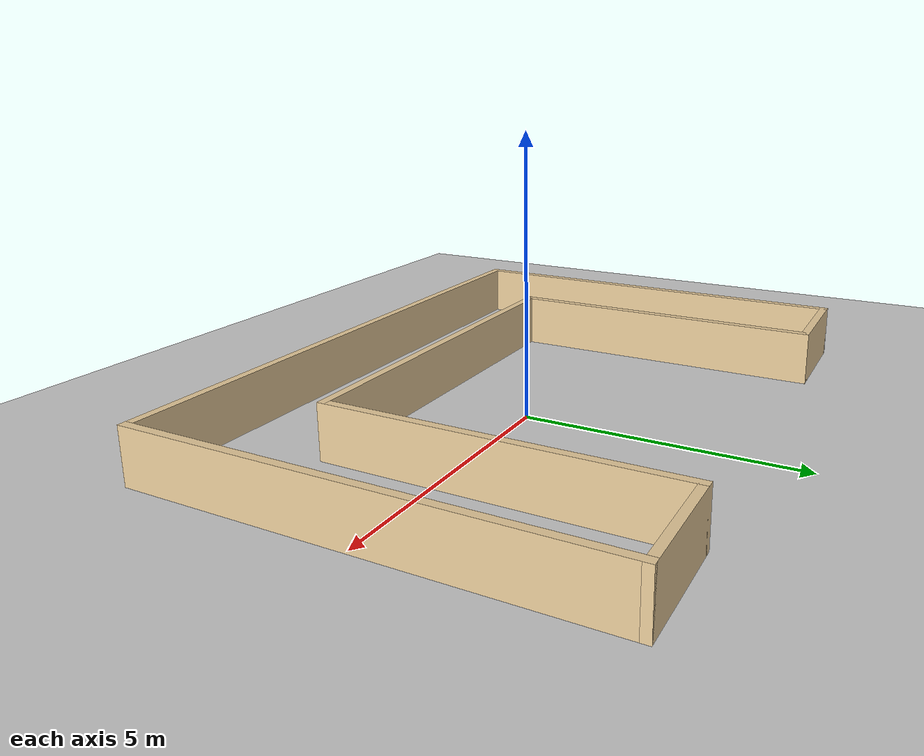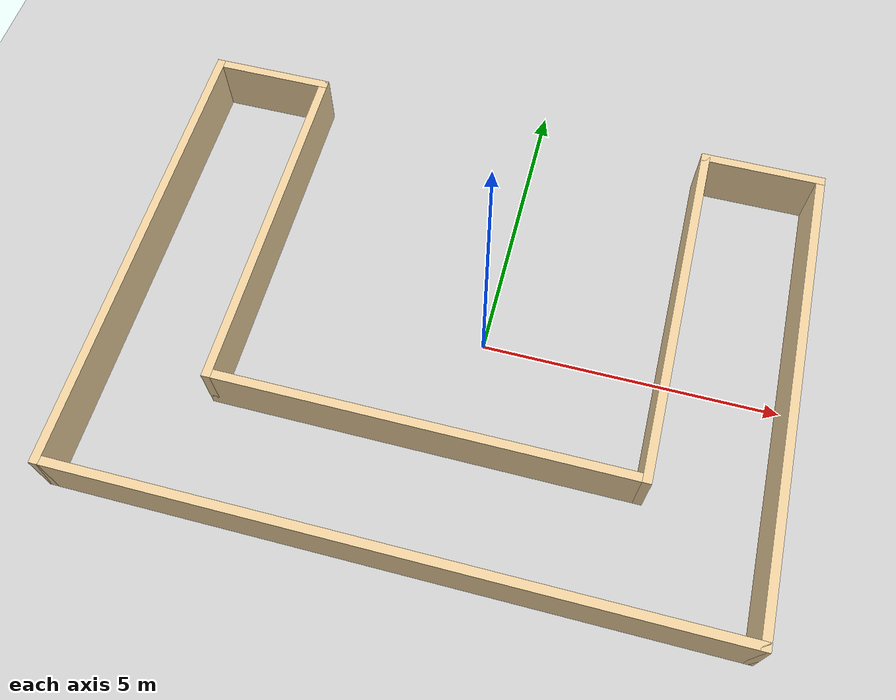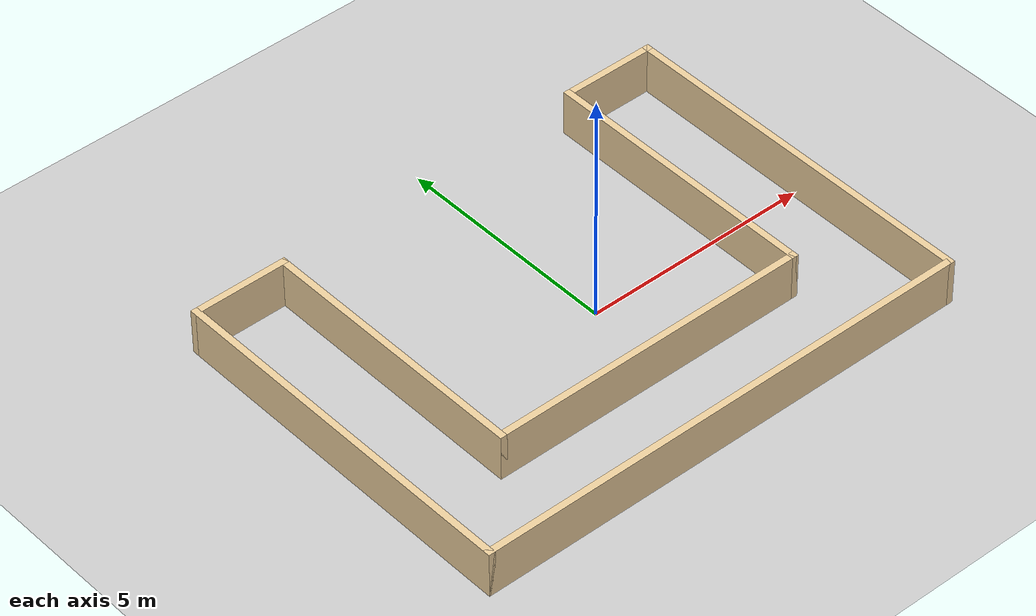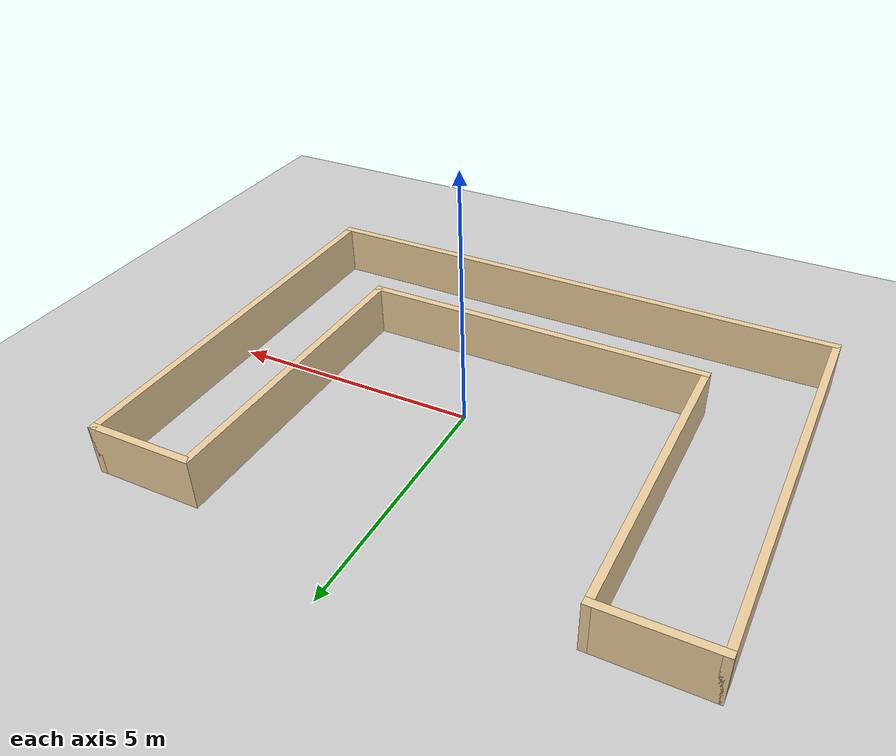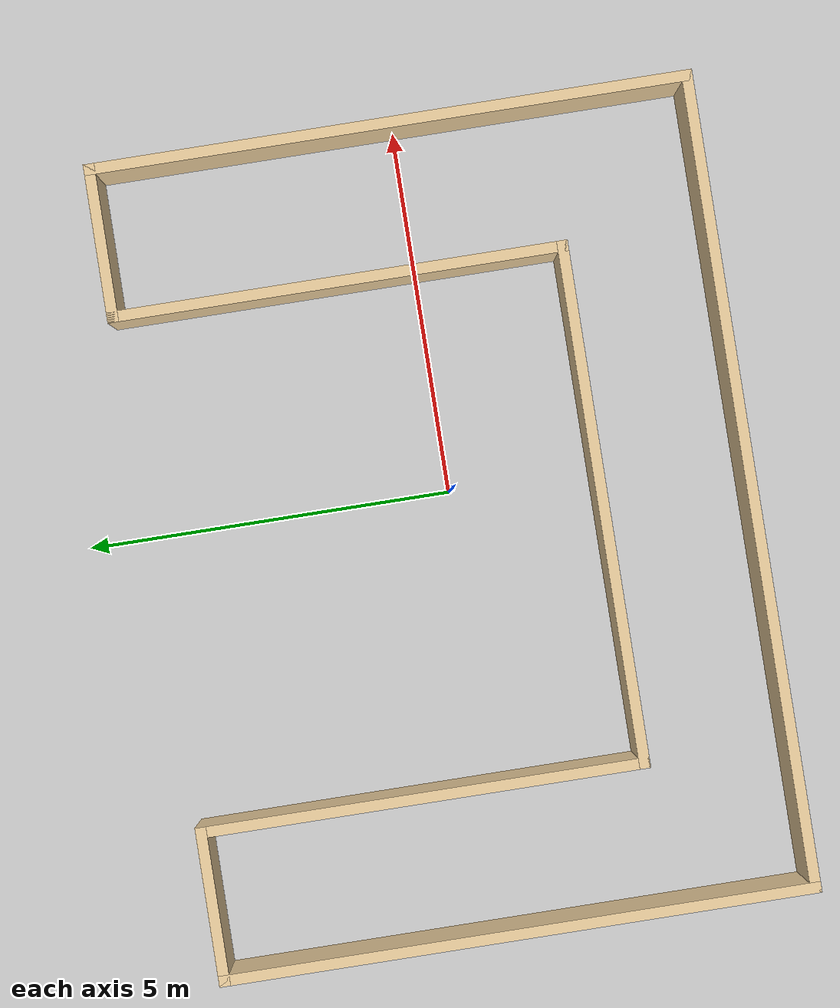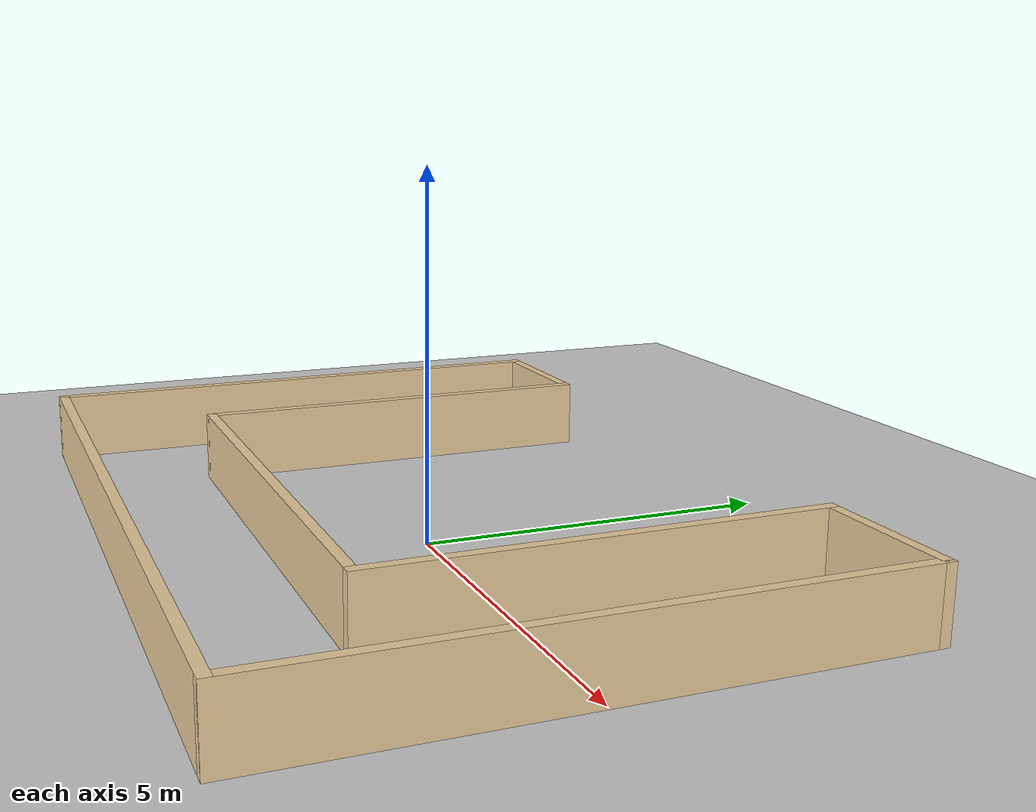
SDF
<sdf version="1.6">
 <world name="default">
  <light name="sun" type="directional">
   <pose>0 0 10 0 -0 0</pose>
   <diffuse>0.8 0.8 0.8 1</diffuse>
   <specular>0.2 0.2 0.2 1</specular>
   <attenuation>
    <range>1000</range>
    <constant>0.9</constant>
    <linear>0.01</linear>
    <quadratic>0.001</quadratic>
   </attenuation>
   <direction>-0.5 0.1 -0.9</direction>
  </light>
  <model name="ground_plane">
   <static>1</static>
   <link name="link">
    <collision name="collision">
     <geometry><plane><normal>0 0 1</normal><size>100 100</size></plane></geometry>
     <surface><friction><ode><mu>100</mu><mu2>50</mu2></ode></friction></surface>
    </collision>
    <visual name="visual">
     <cast_shadows>0</cast_shadows>
     <geometry><plane><normal>0 0 1</normal><size>100 100</size></plane></geometry>
     <material>
      <script><uri>file://media/materials/scripts/gazebo.material</uri><name>Gazebo/Grey</name></script>
     </material>
    </visual>
   </link>
  </model>
  <gravity>0 0 -9.8</gravity>
  <magnetic_field>6e-06 2.3e-05 -4.2e-05</magnetic_field>
  <atmosphere type="adiabatic"/>
  <physics name="default_physics" default="0" type="ode">
   <max_step_size>0.001</max_step_size>
   <real_time_factor>1</real_time_factor>
   <real_time_update_rate>1000</real_time_update_rate>
  </physics>
  <scene><ambient>0.4 0.4 0.4 1</ambient><background>0.7 0.7 0.7 1</background><shadows>1</shadows></scene>
  <spherical_coordinates>
   <surface_model>EARTH_WGS84</surface_model>
   <latitude_deg>0</latitude_deg>
   <longitude_deg>0</longitude_deg>
   <elevation>0</elevation>
   <heading_deg>0</heading_deg>
  </spherical_coordinates>
  <model name="102">
   <pose>-0.5 0.05 0 0 -0 0</pose>
   <link name="Wall_11">
    <collision name="Wall_11_Collision">
     <geometry><box><size>11.15 0.15 1</size></box></geometry>
     <pose>0 0 0.5 0 -0 0</pose>
    </collision>
    <visual name="Wall_11_Visual">
     <pose>0 0 0.5 0 -0 0</pose>
     <geometry><box><size>11.15 0.15 1</size></box></geometry>
     <material>
      <script><uri>file://media/materials/scripts/gazebo.material</uri><name>Gazebo/Grey</name></script>
      <ambient>0.921569 0.807843 0.615686 1</ambient>
     </material>
     <meta><layer>0</layer></meta>
    </visual>
    <pose>0 -4.05 0 0 -0 0</pose>
   </link>
   <link name="Wall_13">
    <collision name="Wall_13_Collision">
     <geometry><box><size>8.25 0.15 1</size></box></geometry>
     <pose>0 0 0.5 0 -0 0</pose>
    </collision>
    <visual name="Wall_13_Visual">
     <pose>0 0 0.5 0 -0 0</pose>
     <geometry><box><size>8.25 0.15 1</size></box></geometry>
     <material>
      <script><uri>file://media/materials/scripts/gazebo.material</uri><name>Gazebo/Grey</name></script>
      <ambient>0.921569 0.807843 0.615686 1</ambient>
     </material>
     <meta><layer>0</layer></meta>
    </visual>
    <pose>5.5 0 0 0 -0 1.5708</pose>
   </link>
   <link name="Wall_15">
    <collision name="Wall_15_Collision">
     <geometry><box><size>6.25 0.15 1</size></box></geometry>
     <pose>0 0 0.5 0 -0 0</pose>
    </collision>
    <visual name="Wall_15_Visual">
     <pose>0 0 0.5 0 -0 0</pose>
     <geometry><box><size>6.25 0.15 1</size></box></geometry>
     <material>
      <script><uri>file://media/materials/scripts/gazebo.material</uri><name>Gazebo/Grey</name></script>
      <ambient>0.921569 0.807843 0.615686 1</ambient>
     </material>
     <meta><layer>0</layer></meta>
    </visual>
    <pose>3.5 1 0 0 -0 1.5708</pose>
   </link>
   <link name="Wall_16">
    <collision name="Wall_16_Collision">
     <geometry><box><size>2.15 0.15 1</size></box></geometry>
     <pose>0 0 0.5 0 -0 0</pose>
    </collision>
    <visual name="Wall_16_Visual">
     <pose>0 0 0.5 0 -0 0</pose>
     <geometry><box><size>2.15 0.15 1</size></box></geometry>
     <material>
      <script><uri>file://media/materials/scripts/gazebo.material</uri><name>Gazebo/Grey</name></script>
      <ambient>0.921569 0.807843 0.615686 1</ambient>
     </material>
     <meta><layer>0</layer></meta>
    </visual>
    <pose>4.5 4.05 0 0 -0 0</pose>
   </link>
   <link name="Wall_3">
    <collision name="Wall_3_Collision">
     <geometry><box><size>2.15 0.15 1</size></box></geometry>
     <pose>0 0 0.5 0 -0 0</pose>
    </collision>
    <visual name="Wall_3_Visual">
     <pose>0 0 0.5 0 -0 0</pose>
     <geometry><box><size>2.15 0.15 1</size></box></geometry>
     <material>
      <script><uri>file://media/materials/scripts/gazebo.material</uri><name>Gazebo/Grey</name></script>
      <ambient>0.921569 0.807843 0.615686 1</ambient>
     </material>
     <meta><layer>0</layer></meta>
    </visual>
    <pose>-4.5 3.95 0 0 -0 0</pose>
   </link>
   <link name="Wall_5">
    <collision name="Wall_5_Collision">
     <geometry><box><size>8.15 0.15 1</size></box></geometry>
     <pose>0 0 0.5 0 -0 0</pose>
    </collision>
    <visual name="Wall_5_Visual">
     <pose>0 0 0.5 0 -0 0</pose>
     <geometry><box><size>8.15 0.15 1</size></box></geometry>
     <material>
      <script><uri>file://media/materials/scripts/gazebo.material</uri><name>Gazebo/Grey</name></script>
      <ambient>0.921569 0.807843 0.615686 1</ambient>
     </material>
     <meta><layer>0</layer></meta>
    </visual>
    <pose>-5.5 -0.05 0 0 0 -1.5708</pose>
   </link>
   <link name="Wall_7">
    <collision name="Wall_7_Collision">
     <geometry><box><size>6.15 0.15 1</size></box></geometry>
     <pose>0 0 0.5 0 -0 0</pose>
    </collision>
    <visual name="Wall_7_Visual">
     <pose>0 0 0.5 0 -0 0</pose>
     <geometry><box><size>6.15 0.15 1</size></box></geometry>
     <material>
      <script><uri>file://media/materials/scripts/gazebo.material</uri><name>Gazebo/Grey</name></script>
      <ambient>0.921569 0.807843 0.615686 1</ambient>
     </material>
     <meta><layer>0</layer></meta>
    </visual>
    <pose>-3.5 0.95 0 0 0 -1.5708</pose>
   </link>
   <link name="Wall_9">
    <collision name="Wall_9_Collision">
     <geometry><box><size>7.15 0.15 1</size></box></geometry>
     <pose>0 0 0.5 0 -0 0</pose>
    </collision>
    <visual name="Wall_9_Visual">
     <pose>0 0 0.5 0 -0 0</pose>
     <geometry><box><size>7.15 0.15 1</size></box></geometry>
     <material>
      <script><uri>file://media/materials/scripts/gazebo.material</uri><name>Gazebo/Grey</name></script>
      <ambient>0.921569 0.807843 0.615686 1</ambient>
     </material>
     <meta><layer>0</layer></meta>
    </visual>
    <pose>0 -2.05 0 0 -0 0</pose>
   </link>
   <static>1</static>
  </model>
 </world>
</sdf>
